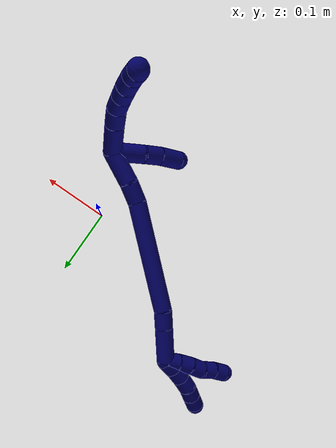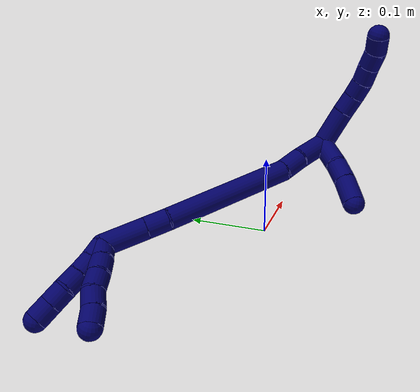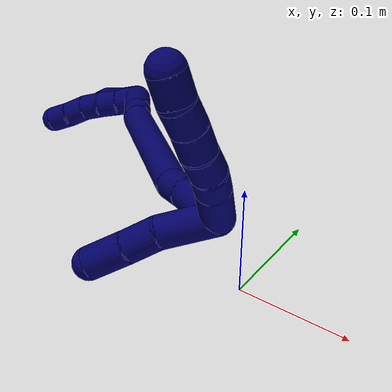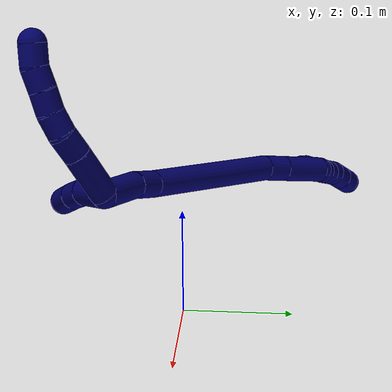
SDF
<sdf version="1.7">
 <world name="default">
  <model name="7">
   <static>0</static>
   <link name="7">
    <collision name="collision-cylinder-e_1_2_8">
     <pose>0.003422 -0.004812 0.022444 0.211224 0.147994 0.015717</pose>
     <geometry><cylinder><radius>0.0125</radius><length>0.046415</length></cylinder></geometry>
     <surface>
      <friction><ode><mu>1.16</mu><mu2>1.16</mu2><slip1>0</slip1><slip2>0</slip2></ode></friction>
      <contact><ode><kp>1e+06</kp><kd>1</kd><max_vel>0</max_vel><min_depth>0.001</min_depth></ode></contact>
     </surface>
    </collision>
    <visual name="visual-cylinder-e_1_2_8">
     <pose>0.003422 -0.004812 0.022444 0.211224 0.147994 0.015717</pose>
     <geometry><cylinder><radius>0.0125</radius><length>0.046415</length></cylinder></geometry>
     <material><ambient>0.003922 0 0.403922 1</ambient></material>
    </visual>
    <collision name="collision-cylinder-e_2_8_9">
     <pose>0.008376 -0.012464 0.055864 0.253153 0.134346 0.017122</pose>
     <geometry><cylinder><radius>0.0125</radius><length>0.022882</length></cylinder></geometry>
     <surface>
      <friction><ode><mu>1.16</mu><mu2>1.16</mu2><slip1>0</slip1><slip2>0</slip2></ode></friction>
      <contact><ode><kp>1e+06</kp><kd>1</kd><max_vel>0</max_vel><min_depth>0.001</min_depth></ode></contact>
     </surface>
    </collision>
    <visual name="visual-cylinder-e_2_8_9">
     <pose>0.008376 -0.012464 0.055864 0.253153 0.134346 0.017122</pose>
     <geometry><cylinder><radius>0.0125</radius><length>0.022882</length></cylinder></geometry>
     <material><ambient>0.003922 0 0.403922 1</ambient></material>
    </visual>
    <collision name="collision-cylinder-e_3_9_10">
     <pose>0.008756 -0.017582 0.076828 0.224192 -0.112041 -0.012625</pose>
     <geometry><cylinder><radius>0.0125</radius><length>0.020618</length></cylinder></geometry>
     <surface>
      <friction><ode><mu>1.16</mu><mu2>1.16</mu2><slip1>0</slip1><slip2>0</slip2></ode></friction>
      <contact><ode><kp>1e+06</kp><kd>1</kd><max_vel>0</max_vel><min_depth>0.001</min_depth></ode></contact>
     </surface>
    </collision>
    <visual name="visual-cylinder-e_3_9_10">
     <pose>0.008756 -0.017582 0.076828 0.224192 -0.112041 -0.012625</pose>
     <geometry><cylinder><radius>0.0125</radius><length>0.020618</length></cylinder></geometry>
     <material><ambient>0.003922 0 0.403922 1</ambient></material>
    </visual>
    <collision name="collision-cylinder-e_4_10_11">
     <pose>0.005645 -0.020611 0.096596 0.076749 -0.197104 -0.007592</pose>
     <geometry><cylinder><radius>0.0125</radius><length>0.020004</length></cylinder></geometry>
     <surface>
      <friction><ode><mu>1.16</mu><mu2>1.16</mu2><slip1>0</slip1><slip2>0</slip2></ode></friction>
      <contact><ode><kp>1e+06</kp><kd>1</kd><max_vel>0</max_vel><min_depth>0.001</min_depth></ode></contact>
     </surface>
    </collision>
    <visual name="visual-cylinder-e_4_10_11">
     <pose>0.005645 -0.020611 0.096596 0.076749 -0.197104 -0.007592</pose>
     <geometry><cylinder><radius>0.0125</radius><length>0.020004</length></cylinder></geometry>
     <material><ambient>0.003922 0 0.403922 1</ambient></material>
    </visual>
    <collision name="collision-cylinder-e_5_11_12">
     <pose>0.001307 -0.022667 0.116041 0.134057 -0.239254 -0.016138</pose>
     <geometry><cylinder><radius>0.0125</radius><length>0.020078</length></cylinder></geometry>
     <surface>
      <friction><ode><mu>1.16</mu><mu2>1.16</mu2><slip1>0</slip1><slip2>0</slip2></ode></friction>
      <contact><ode><kp>1e+06</kp><kd>1</kd><max_vel>0</max_vel><min_depth>0.001</min_depth></ode></contact>
     </surface>
    </collision>
    <visual name="visual-cylinder-e_5_11_12">
     <pose>0.001307 -0.022667 0.116041 0.134057 -0.239254 -0.016138</pose>
     <geometry><cylinder><radius>0.0125</radius><length>0.020078</length></cylinder></geometry>
     <material><ambient>0.003922 0 0.403922 1</ambient></material>
    </visual>
    <collision name="collision-cylinder-e_6_12_6">
     <pose>-0.004695 -0.022851 0.134961 -0.120406 -0.370721 0.022604</pose>
     <geometry><cylinder><radius>0.0125</radius><length>0.020003</length></cylinder></geometry>
     <surface>
      <friction><ode><mu>1.16</mu><mu2>1.16</mu2><slip1>0</slip1><slip2>0</slip2></ode></friction>
      <contact><ode><kp>1e+06</kp><kd>1</kd><max_vel>0</max_vel><min_depth>0.001</min_depth></ode></contact>
     </surface>
    </collision>
    <visual name="visual-cylinder-e_6_12_6">
     <pose>-0.004695 -0.022851 0.134961 -0.120406 -0.370721 0.022604</pose>
     <geometry><cylinder><radius>0.0125</radius><length>0.020003</length></cylinder></geometry>
     <material><ambient>0.003922 0 0.403922 1</ambient></material>
    </visual>
    <collision name="collision-cylinder-e_1_2_13">
     <pose>-0.015267 -0.014515 -0.004363 1.86279 -0.789055 -1.02084</pose>
     <geometry><cylinder><radius>0.0125</radius><length>0.043026</length></cylinder></geometry>
     <surface>
      <friction><ode><mu>1.16</mu><mu2>1.16</mu2><slip1>0</slip1><slip2>0</slip2></ode></friction>
      <contact><ode><kp>1e+06</kp><kd>1</kd><max_vel>0</max_vel><min_depth>0.001</min_depth></ode></contact>
     </surface>
    </collision>
    <visual name="visual-cylinder-e_1_2_13">
     <pose>-0.015267 -0.014515 -0.004363 1.86279 -0.789055 -1.02084</pose>
     <geometry><cylinder><radius>0.0125</radius><length>0.043026</length></cylinder></geometry>
     <material><ambient>0.003922 0 0.403922 1</ambient></material>
    </visual>
    <collision name="collision-cylinder-e_2_13_14">
     <pose>-0.038117 -0.037801 -0.013504 2.06959 -0.649293 -1.03097</pose>
     <geometry><cylinder><radius>0.0125</radius><length>0.02508</length></cylinder></geometry>
     <surface>
      <friction><ode><mu>1.16</mu><mu2>1.16</mu2><slip1>0</slip1><slip2>0</slip2></ode></friction>
      <contact><ode><kp>1e+06</kp><kd>1</kd><max_vel>0</max_vel><min_depth>0.001</min_depth></ode></contact>
     </surface>
    </collision>
    <visual name="visual-cylinder-e_2_13_14">
     <pose>-0.038117 -0.037801 -0.013504 2.06959 -0.649293 -1.03097</pose>
     <geometry><cylinder><radius>0.0125</radius><length>0.02508</length></cylinder></geometry>
     <material><ambient>0.003922 0 0.403922 1</ambient></material>
    </visual>
    <collision name="collision-cylinder-e_3_14_5">
     <pose>-0.056062 -0.056572 -0.025132 2.17137 -0.707348 -1.22199</pose>
     <geometry><cylinder><radius>0.0125</radius><length>0.031894</length></cylinder></geometry>
     <surface>
      <friction><ode><mu>1.16</mu><mu2>1.16</mu2><slip1>0</slip1><slip2>0</slip2></ode></friction>
      <contact><ode><kp>1e+06</kp><kd>1</kd><max_vel>0</max_vel><min_depth>0.001</min_depth></ode></contact>
     </surface>
    </collision>
    <visual name="visual-cylinder-e_3_14_5">
     <pose>-0.056062 -0.056572 -0.025132 2.17137 -0.707348 -1.22199</pose>
     <geometry><cylinder><radius>0.0125</radius><length>0.031894</length></cylinder></geometry>
     <material><ambient>0.003922 0 0.403922 1</ambient></material>
    </visual>
    <collision name="collision-cylinder-e_1_2_15">
     <pose>-0.020656 0.006951 -0.00757 -2.39882 -1.10914 2.019</pose>
     <geometry><cylinder><radius>0.0125</radius><length>0.046143</length></cylinder></geometry>
     <surface>
      <friction><ode><mu>1.16</mu><mu2>1.16</mu2><slip1>0</slip1><slip2>0</slip2></ode></friction>
      <contact><ode><kp>1e+06</kp><kd>1</kd><max_vel>0</max_vel><min_depth>0.001</min_depth></ode></contact>
     </surface>
    </collision>
    <visual name="visual-cylinder-e_1_2_15">
     <pose>-0.020656 0.006951 -0.00757 -2.39882 -1.10914 2.019</pose>
     <geometry><cylinder><radius>0.0125</radius><length>0.046143</length></cylinder></geometry>
     <material><ambient>0.003922 0 0.403922 1</ambient></material>
    </visual>
    <collision name="collision-cylinder-e_2_15_16">
     <pose>-0.052772 0.018422 -0.021642 -2.53397 -0.966065 2.06402</pose>
     <geometry><cylinder><radius>0.0125</radius><length>0.027859</length></cylinder></geometry>
     <surface>
      <friction><ode><mu>1.16</mu><mu2>1.16</mu2><slip1>0</slip1><slip2>0</slip2></ode></friction>
      <contact><ode><kp>1e+06</kp><kd>1</kd><max_vel>0</max_vel><min_depth>0.001</min_depth></ode></contact>
     </surface>
    </collision>
    <visual name="visual-cylinder-e_2_15_16">
     <pose>-0.052772 0.018422 -0.021642 -2.53397 -0.966065 2.06402</pose>
     <geometry><cylinder><radius>0.0125</radius><length>0.027859</length></cylinder></geometry>
     <material><ambient>0.003922 0 0.403922 1</ambient></material>
    </visual>
    <collision name="collision-cylinder-e_3_16_17">
     <pose>-0.122492 0.062054 -0.057206 -2.20987 -0.874286 1.49768</pose>
     <geometry><cylinder><radius>0.0125</radius><length>0.151902</length></cylinder></geometry>
     <surface>
      <friction><ode><mu>1.16</mu><mu2>1.16</mu2><slip1>0</slip1><slip2>0</slip2></ode></friction>
      <contact><ode><kp>1e+06</kp><kd>1</kd><max_vel>0</max_vel><min_depth>0.001</min_depth></ode></contact>
     </surface>
    </collision>
    <visual name="visual-cylinder-e_3_16_17">
     <pose>-0.122492 0.062054 -0.057206 -2.20987 -0.874286 1.49768</pose>
     <geometry><cylinder><radius>0.0125</radius><length>0.151902</length></cylinder></geometry>
     <material><ambient>0.003922 0 0.403922 1</ambient></material>
    </visual>
    <collision name="collision-cylinder-e_4_17_18">
     <pose>-0.188743 0.108795 -0.092139 -2.22649 -0.69274 1.26504</pose>
     <geometry><cylinder><radius>0.0125</radius><length>0.025022</length></cylinder></geometry>
     <surface>
      <friction><ode><mu>1.16</mu><mu2>1.16</mu2><slip1>0</slip1><slip2>0</slip2></ode></friction>
      <contact><ode><kp>1e+06</kp><kd>1</kd><max_vel>0</max_vel><min_depth>0.001</min_depth></ode></contact>
     </surface>
    </collision>
    <visual name="visual-cylinder-e_4_17_18">
     <pose>-0.188743 0.108795 -0.092139 -2.22649 -0.69274 1.26504</pose>
     <geometry><cylinder><radius>0.0125</radius><length>0.025022</length></cylinder></geometry>
     <material><ambient>0.003922 0 0.403922 1</ambient></material>
    </visual>
    <collision name="collision-cylinder-e_5_18_1">
     <pose>-0.212303 0.131499 -0.109517 -2.22286 -0.687402 1.2527</pose>
     <geometry><cylinder><radius>0.0125</radius><length>0.049073</length></cylinder></geometry>
     <surface>
      <friction><ode><mu>1.16</mu><mu2>1.16</mu2><slip1>0</slip1><slip2>0</slip2></ode></friction>
      <contact><ode><kp>1e+06</kp><kd>1</kd><max_vel>0</max_vel><min_depth>0.001</min_depth></ode></contact>
     </surface>
    </collision>
    <visual name="visual-cylinder-e_5_18_1">
     <pose>-0.212303 0.131499 -0.109517 -2.22286 -0.687402 1.2527</pose>
     <geometry><cylinder><radius>0.0125</radius><length>0.049073</length></cylinder></geometry>
     <material><ambient>0.003922 0 0.403922 1</ambient></material>
    </visual>
    <collision name="collision-cylinder-e_1_1_19">
     <pose>-0.236304 0.146525 -0.126401 3.13284 -1.00317 -3.12564</pose>
     <geometry><cylinder><radius>0.0125</radius><length>0.02</length></cylinder></geometry>
     <surface>
      <friction><ode><mu>1.16</mu><mu2>1.16</mu2><slip1>0</slip1><slip2>0</slip2></ode></friction>
      <contact><ode><kp>1e+06</kp><kd>1</kd><max_vel>0</max_vel><min_depth>0.001</min_depth></ode></contact>
     </surface>
    </collision>
    <visual name="visual-cylinder-e_1_1_19">
     <pose>-0.236304 0.146525 -0.126401 3.13284 -1.00317 -3.12564</pose>
     <geometry><cylinder><radius>0.0125</radius><length>0.02</length></cylinder></geometry>
     <material><ambient>0.003922 0 0.403922 1</ambient></material>
    </visual>
    <collision name="collision-cylinder-e_2_19_20">
     <pose>-0.253213 0.147258 -0.137023 -2.99405 -1.01173 2.87632</pose>
     <geometry><cylinder><radius>0.0125</radius><length>0.02</length></cylinder></geometry>
     <surface>
      <friction><ode><mu>1.16</mu><mu2>1.16</mu2><slip1>0</slip1><slip2>0</slip2></ode></friction>
      <contact><ode><kp>1e+06</kp><kd>1</kd><max_vel>0</max_vel><min_depth>0.001</min_depth></ode></contact>
     </surface>
    </collision>
    <visual name="visual-cylinder-e_2_19_20">
     <pose>-0.253213 0.147258 -0.137023 -2.99405 -1.01173 2.87632</pose>
     <geometry><cylinder><radius>0.0125</radius><length>0.02</length></cylinder></geometry>
     <material><ambient>0.003922 0 0.403922 1</ambient></material>
    </visual>
    <collision name="collision-cylinder-e_3_20_21">
     <pose>-0.270102 0.149438 -0.147494 -2.87976 -0.999265 2.66818</pose>
     <geometry><cylinder><radius>0.0125</radius><length>0.02</length></cylinder></geometry>
     <surface>
      <friction><ode><mu>1.16</mu><mu2>1.16</mu2><slip1>0</slip1><slip2>0</slip2></ode></friction>
      <contact><ode><kp>1e+06</kp><kd>1</kd><max_vel>0</max_vel><min_depth>0.001</min_depth></ode></contact>
     </surface>
    </collision>
    <visual name="visual-cylinder-e_3_20_21">
     <pose>-0.270102 0.149438 -0.147494 -2.87976 -0.999265 2.66818</pose>
     <geometry><cylinder><radius>0.0125</radius><length>0.02</length></cylinder></geometry>
     <material><ambient>0.003922 0 0.403922 1</ambient></material>
    </visual>
    <collision name="collision-cylinder-e_4_21_22">
     <pose>-0.285419 0.153021 -0.159614 -2.83501 -0.762397 2.40573</pose>
     <geometry><cylinder><radius>0.0125</radius><length>0.02</length></cylinder></geometry>
     <surface>
      <friction><ode><mu>1.16</mu><mu2>1.16</mu2><slip1>0</slip1><slip2>0</slip2></ode></friction>
      <contact><ode><kp>1e+06</kp><kd>1</kd><max_vel>0</max_vel><min_depth>0.001</min_depth></ode></contact>
     </surface>
    </collision>
    <visual name="visual-cylinder-e_4_21_22">
     <pose>-0.285419 0.153021 -0.159614 -2.83501 -0.762397 2.40573</pose>
     <geometry><cylinder><radius>0.0125</radius><length>0.02</length></cylinder></geometry>
     <material><ambient>0.003922 0 0.403922 1</ambient></material>
    </visual>
    <collision name="collision-cylinder-e_5_22_4">
     <pose>-0.299273 0.157368 -0.173367 -2.83587 -0.768128 2.41317</pose>
     <geometry><cylinder><radius>0.0125</radius><length>0.02</length></cylinder></geometry>
     <surface>
      <friction><ode><mu>1.16</mu><mu2>1.16</mu2><slip1>0</slip1><slip2>0</slip2></ode></friction>
      <contact><ode><kp>1e+06</kp><kd>1</kd><max_vel>0</max_vel><min_depth>0.001</min_depth></ode></contact>
     </surface>
    </collision>
    <visual name="visual-cylinder-e_5_22_4">
     <pose>-0.299273 0.157368 -0.173367 -2.83587 -0.768128 2.41317</pose>
     <geometry><cylinder><radius>0.0125</radius><length>0.02</length></cylinder></geometry>
     <material><ambient>0.003922 0 0.403922 1</ambient></material>
    </visual>
    <collision name="collision-cylinder-e_1_1_23">
     <pose>-0.235719 0.141048 -0.123838 2.0418 -0.90217 -1.33753</pose>
     <geometry><cylinder><radius>0.0125</radius><length>0.02</length></cylinder></geometry>
     <surface>
      <friction><ode><mu>1.16</mu><mu2>1.16</mu2><slip1>0</slip1><slip2>0</slip2></ode></friction>
      <contact><ode><kp>1e+06</kp><kd>1</kd><max_vel>0</max_vel><min_depth>0.001</min_depth></ode></contact>
     </surface>
    </collision>
    <visual name="visual-cylinder-e_1_1_23">
     <pose>-0.235719 0.141048 -0.123838 2.0418 -0.90217 -1.33753</pose>
     <geometry><cylinder><radius>0.0125</radius><length>0.02</length></cylinder></geometry>
     <material><ambient>0.003922 0 0.403922 1</ambient></material>
    </visual>
    <collision name="collision-cylinder-e_2_23_24">
     <pose>-0.252147 0.131094 -0.129244 2.10039 -1.03173 -1.55979</pose>
     <geometry><cylinder><radius>0.0125</radius><length>0.02</length></cylinder></geometry>
     <surface>
      <friction><ode><mu>1.16</mu><mu2>1.16</mu2><slip1>0</slip1><slip2>0</slip2></ode></friction>
      <contact><ode><kp>1e+06</kp><kd>1</kd><max_vel>0</max_vel><min_depth>0.001</min_depth></ode></contact>
     </surface>
    </collision>
    <visual name="visual-cylinder-e_2_23_24">
     <pose>-0.252147 0.131094 -0.129244 2.10039 -1.03173 -1.55979</pose>
     <geometry><cylinder><radius>0.0125</radius><length>0.02</length></cylinder></geometry>
     <material><ambient>0.003922 0 0.403922 1</ambient></material>
    </visual>
    <collision name="collision-cylinder-e_3_24_25">
     <pose>-0.269286 0.123174 -0.135659 2.40156 -1.02682 -1.93644</pose>
     <geometry><cylinder><radius>0.0125</radius><length>0.02</length></cylinder></geometry>
     <surface>
      <friction><ode><mu>1.16</mu><mu2>1.16</mu2><slip1>0</slip1><slip2>0</slip2></ode></friction>
      <contact><ode><kp>1e+06</kp><kd>1</kd><max_vel>0</max_vel><min_depth>0.001</min_depth></ode></contact>
     </surface>
    </collision>
    <visual name="visual-cylinder-e_3_24_25">
     <pose>-0.269286 0.123174 -0.135659 2.40156 -1.02682 -1.93644</pose>
     <geometry><cylinder><radius>0.0125</radius><length>0.02</length></cylinder></geometry>
     <material><ambient>0.003922 0 0.403922 1</ambient></material>
    </visual>
    <collision name="collision-cylinder-e_4_25_26">
     <pose>-0.284813 0.113707 -0.143441 2.15596 -0.771249 -1.29458</pose>
     <geometry><cylinder><radius>0.0125</radius><length>0.02</length></cylinder></geometry>
     <surface>
      <friction><ode><mu>1.16</mu><mu2>1.16</mu2><slip1>0</slip1><slip2>0</slip2></ode></friction>
      <contact><ode><kp>1e+06</kp><kd>1</kd><max_vel>0</max_vel><min_depth>0.001</min_depth></ode></contact>
     </surface>
    </collision>
    <visual name="visual-cylinder-e_4_25_26">
     <pose>-0.284813 0.113707 -0.143441 2.15596 -0.771249 -1.29458</pose>
     <geometry><cylinder><radius>0.0125</radius><length>0.02</length></cylinder></geometry>
     <material><ambient>0.003922 0 0.403922 1</ambient></material>
    </visual>
    <collision name="collision-cylinder-e_5_26_3">
     <pose>-0.299705 0.103216 -0.15151 2.30926 -0.91437 -1.67769</pose>
     <geometry><cylinder><radius>0.0125</radius><length>0.02</length></cylinder></geometry>
     <surface>
      <friction><ode><mu>1.16</mu><mu2>1.16</mu2><slip1>0</slip1><slip2>0</slip2></ode></friction>
      <contact><ode><kp>1e+06</kp><kd>1</kd><max_vel>0</max_vel><min_depth>0.001</min_depth></ode></contact>
     </surface>
    </collision>
    <visual name="visual-cylinder-e_5_26_3">
     <pose>-0.299705 0.103216 -0.15151 2.30926 -0.91437 -1.67769</pose>
     <geometry><cylinder><radius>0.0125</radius><length>0.02</length></cylinder></geometry>
     <material><ambient>0.003922 0 0.403922 1</ambient></material>
    </visual>
    <collision name="collision-sphere-3">
     <pose>-0.307627 0.098703 -0.155618 0 -0 0</pose>
     <geometry><sphere><radius>0.0125</radius></sphere></geometry>
     <surface>
      <friction><ode><mu>1.16</mu><mu2>1.16</mu2><slip1>0</slip1><slip2>0</slip2></ode></friction>
      <contact><ode><kp>1e+06</kp><kd>1</kd><max_vel>0</max_vel><min_depth>0.001</min_depth></ode></contact>
     </surface>
    </collision>
    <visual name="visual-sphere-3">
     <pose>-0.307627 0.098703 -0.155618 0 -0 0</pose>
     <geometry><sphere><radius>0.0125</radius></sphere></geometry>
     <material><ambient>0.003922 0 0.403922 1</ambient></material>
    </visual>
    <collision name="collision-sphere-26">
     <pose>-0.291783 0.107729 -0.147402 0 -0 0</pose>
     <geometry><sphere><radius>0.0125</radius></sphere></geometry>
     <surface>
      <friction><ode><mu>1.16</mu><mu2>1.16</mu2><slip1>0</slip1><slip2>0</slip2></ode></friction>
      <contact><ode><kp>1e+06</kp><kd>1</kd><max_vel>0</max_vel><min_depth>0.001</min_depth></ode></contact>
     </surface>
    </collision>
    <visual name="visual-sphere-26">
     <pose>-0.291783 0.107729 -0.147402 0 -0 0</pose>
     <geometry><sphere><radius>0.0125</radius></sphere></geometry>
     <material><ambient>0.003922 0 0.403922 1</ambient></material>
    </visual>
    <collision name="collision-sphere-25">
     <pose>-0.277842 0.119684 -0.139481 0 -0 0</pose>
     <geometry><sphere><radius>0.0125</radius></sphere></geometry>
     <surface>
      <friction><ode><mu>1.16</mu><mu2>1.16</mu2><slip1>0</slip1><slip2>0</slip2></ode></friction>
      <contact><ode><kp>1e+06</kp><kd>1</kd><max_vel>0</max_vel><min_depth>0.001</min_depth></ode></contact>
     </surface>
    </collision>
    <visual name="visual-sphere-25">
     <pose>-0.277842 0.119684 -0.139481 0 -0 0</pose>
     <geometry><sphere><radius>0.0125</radius></sphere></geometry>
     <material><ambient>0.003922 0 0.403922 1</ambient></material>
    </visual>
    <collision name="collision-sphere-24">
     <pose>-0.260729 0.126664 -0.131837 0 -0 0</pose>
     <geometry><sphere><radius>0.0125</radius></sphere></geometry>
     <surface>
      <friction><ode><mu>1.16</mu><mu2>1.16</mu2><slip1>0</slip1><slip2>0</slip2></ode></friction>
      <contact><ode><kp>1e+06</kp><kd>1</kd><max_vel>0</max_vel><min_depth>0.001</min_depth></ode></contact>
     </surface>
    </collision>
    <visual name="visual-sphere-24">
     <pose>-0.260729 0.126664 -0.131837 0 -0 0</pose>
     <geometry><sphere><radius>0.0125</radius></sphere></geometry>
     <material><ambient>0.003922 0 0.403922 1</ambient></material>
    </visual>
    <collision name="collision-sphere-23">
     <pose>-0.243566 0.135524 -0.126651 0 -0 0</pose>
     <geometry><sphere><radius>0.0125</radius></sphere></geometry>
     <surface>
      <friction><ode><mu>1.16</mu><mu2>1.16</mu2><slip1>0</slip1><slip2>0</slip2></ode></friction>
      <contact><ode><kp>1e+06</kp><kd>1</kd><max_vel>0</max_vel><min_depth>0.001</min_depth></ode></contact>
     </surface>
    </collision>
    <visual name="visual-sphere-23">
     <pose>-0.243566 0.135524 -0.126651 0 -0 0</pose>
     <geometry><sphere><radius>0.0125</radius></sphere></geometry>
     <material><ambient>0.003922 0 0.403922 1</ambient></material>
    </visual>
    <collision name="collision-sphere-4">
     <pose>-0.306221 0.159533 -0.180226 0 -0 0</pose>
     <geometry><sphere><radius>0.0125</radius></sphere></geometry>
     <surface>
      <friction><ode><mu>1.16</mu><mu2>1.16</mu2><slip1>0</slip1><slip2>0</slip2></ode></friction>
      <contact><ode><kp>1e+06</kp><kd>1</kd><max_vel>0</max_vel><min_depth>0.001</min_depth></ode></contact>
     </surface>
    </collision>
    <visual name="visual-sphere-4">
     <pose>-0.306221 0.159533 -0.180226 0 -0 0</pose>
     <geometry><sphere><radius>0.0125</radius></sphere></geometry>
     <material><ambient>0.003922 0 0.403922 1</ambient></material>
    </visual>
    <collision name="collision-sphere-22">
     <pose>-0.292325 0.155203 -0.166508 0 -0 0</pose>
     <geometry><sphere><radius>0.0125</radius></sphere></geometry>
     <surface>
      <friction><ode><mu>1.16</mu><mu2>1.16</mu2><slip1>0</slip1><slip2>0</slip2></ode></friction>
      <contact><ode><kp>1e+06</kp><kd>1</kd><max_vel>0</max_vel><min_depth>0.001</min_depth></ode></contact>
     </surface>
    </collision>
    <visual name="visual-sphere-22">
     <pose>-0.292325 0.155203 -0.166508 0 -0 0</pose>
     <geometry><sphere><radius>0.0125</radius></sphere></geometry>
     <material><ambient>0.003922 0 0.403922 1</ambient></material>
    </visual>
    <collision name="collision-sphere-21">
     <pose>-0.278512 0.150838 -0.152719 0 -0 0</pose>
     <geometry><sphere><radius>0.0125</radius></sphere></geometry>
     <surface>
      <friction><ode><mu>1.16</mu><mu2>1.16</mu2><slip1>0</slip1><slip2>0</slip2></ode></friction>
      <contact><ode><kp>1e+06</kp><kd>1</kd><max_vel>0</max_vel><min_depth>0.001</min_depth></ode></contact>
     </surface>
    </collision>
    <visual name="visual-sphere-21">
     <pose>-0.278512 0.150838 -0.152719 0 -0 0</pose>
     <geometry><sphere><radius>0.0125</radius></sphere></geometry>
     <material><ambient>0.003922 0 0.403922 1</ambient></material>
    </visual>
    <collision name="collision-sphere-20">
     <pose>-0.261691 0.148038 -0.142269 0 -0 0</pose>
     <geometry><sphere><radius>0.0125</radius></sphere></geometry>
     <surface>
      <friction><ode><mu>1.16</mu><mu2>1.16</mu2><slip1>0</slip1><slip2>0</slip2></ode></friction>
      <contact><ode><kp>1e+06</kp><kd>1</kd><max_vel>0</max_vel><min_depth>0.001</min_depth></ode></contact>
     </surface>
    </collision>
    <visual name="visual-sphere-20">
     <pose>-0.261691 0.148038 -0.142269 0 -0 0</pose>
     <geometry><sphere><radius>0.0125</radius></sphere></geometry>
     <material><ambient>0.003922 0 0.403922 1</ambient></material>
    </visual>
    <collision name="collision-sphere-12">
     <pose>-0.001072 -0.02397 0.125707 0 -0 0</pose>
     <geometry><sphere><radius>0.0125</radius></sphere></geometry>
     <surface>
      <friction><ode><mu>1.16</mu><mu2>1.16</mu2><slip1>0</slip1><slip2>0</slip2></ode></friction>
      <contact><ode><kp>1e+06</kp><kd>1</kd><max_vel>0</max_vel><min_depth>0.001</min_depth></ode></contact>
     </surface>
    </collision>
    <visual name="visual-sphere-12">
     <pose>-0.001072 -0.02397 0.125707 0 -0 0</pose>
     <geometry><sphere><radius>0.0125</radius></sphere></geometry>
     <material><ambient>0.003922 0 0.403922 1</ambient></material>
    </visual>
    <collision name="collision-sphere-11">
     <pose>0.003686 -0.021363 0.106375 0 -0 0</pose>
     <geometry><sphere><radius>0.0125</radius></sphere></geometry>
     <surface>
      <friction><ode><mu>1.16</mu><mu2>1.16</mu2><slip1>0</slip1><slip2>0</slip2></ode></friction>
      <contact><ode><kp>1e+06</kp><kd>1</kd><max_vel>0</max_vel><min_depth>0.001</min_depth></ode></contact>
     </surface>
    </collision>
    <visual name="visual-sphere-11">
     <pose>0.003686 -0.021363 0.106375 0 -0 0</pose>
     <geometry><sphere><radius>0.0125</radius></sphere></geometry>
     <material><ambient>0.003922 0 0.403922 1</ambient></material>
    </visual>
    <collision name="collision-sphere-10">
     <pose>0.007604 -0.019859 0.086816 0 -0 0</pose>
     <geometry><sphere><radius>0.0125</radius></sphere></geometry>
     <surface>
      <friction><ode><mu>1.16</mu><mu2>1.16</mu2><slip1>0</slip1><slip2>0</slip2></ode></friction>
      <contact><ode><kp>1e+06</kp><kd>1</kd><max_vel>0</max_vel><min_depth>0.001</min_depth></ode></contact>
     </surface>
    </collision>
    <visual name="visual-sphere-10">
     <pose>0.007604 -0.019859 0.086816 0 -0 0</pose>
     <geometry><sphere><radius>0.0125</radius></sphere></geometry>
     <material><ambient>0.003922 0 0.403922 1</ambient></material>
    </visual>
    <collision name="collision-sphere-9">
     <pose>0.009909 -0.015304 0.06684 0 -0 0</pose>
     <geometry><sphere><radius>0.0125</radius></sphere></geometry>
     <surface>
      <friction><ode><mu>1.16</mu><mu2>1.16</mu2><slip1>0</slip1><slip2>0</slip2></ode></friction>
      <contact><ode><kp>1e+06</kp><kd>1</kd><max_vel>0</max_vel><min_depth>0.001</min_depth></ode></contact>
     </surface>
    </collision>
    <visual name="visual-sphere-9">
     <pose>0.009909 -0.015304 0.06684 0 -0 0</pose>
     <geometry><sphere><radius>0.0125</radius></sphere></geometry>
     <material><ambient>0.003922 0 0.403922 1</ambient></material>
    </visual>
    <collision name="collision-sphere-2">
     <geometry><sphere><radius>0.0125</radius></sphere></geometry>
     <surface>
      <friction><ode><mu>1.16</mu><mu2>1.16</mu2><slip1>0</slip1><slip2>0</slip2></ode></friction>
      <contact><ode><kp>1e+06</kp><kd>1</kd><max_vel>0</max_vel><min_depth>0.001</min_depth></ode></contact>
     </surface>
    </collision>
    <visual name="visual-sphere-2">
     <geometry><sphere><radius>0.0125</radius></sphere></geometry>
     <material><ambient>0.003922 0 0.403922 1</ambient></material>
    </visual>
    <collision name="collision-sphere-19">
     <pose>-0.244736 0.146478 -0.131777 0 -0 0</pose>
     <geometry><sphere><radius>0.0125</radius></sphere></geometry>
     <surface>
      <friction><ode><mu>1.16</mu><mu2>1.16</mu2><slip1>0</slip1><slip2>0</slip2></ode></friction>
      <contact><ode><kp>1e+06</kp><kd>1</kd><max_vel>0</max_vel><min_depth>0.001</min_depth></ode></contact>
     </surface>
    </collision>
    <visual name="visual-sphere-19">
     <pose>-0.244736 0.146478 -0.131777 0 -0 0</pose>
     <geometry><sphere><radius>0.0125</radius></sphere></geometry>
     <material><ambient>0.003922 0 0.403922 1</ambient></material>
    </visual>
    <collision name="collision-sphere-8">
     <pose>0.006844 -0.009625 0.044887 0 -0 0</pose>
     <geometry><sphere><radius>0.0125</radius></sphere></geometry>
     <surface>
      <friction><ode><mu>1.16</mu><mu2>1.16</mu2><slip1>0</slip1><slip2>0</slip2></ode></friction>
      <contact><ode><kp>1e+06</kp><kd>1</kd><max_vel>0</max_vel><min_depth>0.001</min_depth></ode></contact>
     </surface>
    </collision>
    <visual name="visual-sphere-8">
     <pose>0.006844 -0.009625 0.044887 0 -0 0</pose>
     <geometry><sphere><radius>0.0125</radius></sphere></geometry>
     <material><ambient>0.003922 0 0.403922 1</ambient></material>
    </visual>
    <collision name="collision-sphere-6">
     <pose>-0.008319 -0.021731 0.144216 0 -0 0</pose>
     <geometry><sphere><radius>0.0125</radius></sphere></geometry>
     <surface>
      <friction><ode><mu>1.16</mu><mu2>1.16</mu2><slip1>0</slip1><slip2>0</slip2></ode></friction>
      <contact><ode><kp>1e+06</kp><kd>1</kd><max_vel>0</max_vel><min_depth>0.001</min_depth></ode></contact>
     </surface>
    </collision>
    <visual name="visual-sphere-6">
     <pose>-0.008319 -0.021731 0.144216 0 -0 0</pose>
     <geometry><sphere><radius>0.0125</radius></sphere></geometry>
     <material><ambient>0.003922 0 0.403922 1</ambient></material>
    </visual>
    <collision name="collision-sphere-13">
     <pose>-0.030535 -0.029029 -0.008726 0 -0 0</pose>
     <geometry><sphere><radius>0.0125</radius></sphere></geometry>
     <surface>
      <friction><ode><mu>1.16</mu><mu2>1.16</mu2><slip1>0</slip1><slip2>0</slip2></ode></friction>
      <contact><ode><kp>1e+06</kp><kd>1</kd><max_vel>0</max_vel><min_depth>0.001</min_depth></ode></contact>
     </surface>
    </collision>
    <visual name="visual-sphere-13">
     <pose>-0.030535 -0.029029 -0.008726 0 -0 0</pose>
     <geometry><sphere><radius>0.0125</radius></sphere></geometry>
     <material><ambient>0.003922 0 0.403922 1</ambient></material>
    </visual>
    <collision name="collision-sphere-14">
     <pose>-0.045699 -0.046572 -0.018282 0 -0 0</pose>
     <geometry><sphere><radius>0.0125</radius></sphere></geometry>
     <surface>
      <friction><ode><mu>1.16</mu><mu2>1.16</mu2><slip1>0</slip1><slip2>0</slip2></ode></friction>
      <contact><ode><kp>1e+06</kp><kd>1</kd><max_vel>0</max_vel><min_depth>0.001</min_depth></ode></contact>
     </surface>
    </collision>
    <visual name="visual-sphere-14">
     <pose>-0.045699 -0.046572 -0.018282 0 -0 0</pose>
     <geometry><sphere><radius>0.0125</radius></sphere></geometry>
     <material><ambient>0.003922 0 0.403922 1</ambient></material>
    </visual>
    <collision name="collision-sphere-5">
     <pose>-0.066424 -0.066572 -0.031982 0 -0 0</pose>
     <geometry><sphere><radius>0.0125</radius></sphere></geometry>
     <surface>
      <friction><ode><mu>1.16</mu><mu2>1.16</mu2><slip1>0</slip1><slip2>0</slip2></ode></friction>
      <contact><ode><kp>1e+06</kp><kd>1</kd><max_vel>0</max_vel><min_depth>0.001</min_depth></ode></contact>
     </surface>
    </collision>
    <visual name="visual-sphere-5">
     <pose>-0.066424 -0.066572 -0.031982 0 -0 0</pose>
     <geometry><sphere><radius>0.0125</radius></sphere></geometry>
     <material><ambient>0.003922 0 0.403922 1</ambient></material>
    </visual>
    <collision name="collision-sphere-15">
     <pose>-0.041313 0.013901 -0.01514 0 -0 0</pose>
     <geometry><sphere><radius>0.0125</radius></sphere></geometry>
     <surface>
      <friction><ode><mu>1.16</mu><mu2>1.16</mu2><slip1>0</slip1><slip2>0</slip2></ode></friction>
      <contact><ode><kp>1e+06</kp><kd>1</kd><max_vel>0</max_vel><min_depth>0.001</min_depth></ode></contact>
     </surface>
    </collision>
    <visual name="visual-sphere-15">
     <pose>-0.041313 0.013901 -0.01514 0 -0 0</pose>
     <geometry><sphere><radius>0.0125</radius></sphere></geometry>
     <material><ambient>0.003922 0 0.403922 1</ambient></material>
    </visual>
    <collision name="collision-sphere-16">
     <pose>-0.064231 0.022944 -0.028144 0 -0 0</pose>
     <geometry><sphere><radius>0.0125</radius></sphere></geometry>
     <surface>
      <friction><ode><mu>1.16</mu><mu2>1.16</mu2><slip1>0</slip1><slip2>0</slip2></ode></friction>
      <contact><ode><kp>1e+06</kp><kd>1</kd><max_vel>0</max_vel><min_depth>0.001</min_depth></ode></contact>
     </surface>
    </collision>
    <visual name="visual-sphere-16">
     <pose>-0.064231 0.022944 -0.028144 0 -0 0</pose>
     <geometry><sphere><radius>0.0125</radius></sphere></geometry>
     <material><ambient>0.003922 0 0.403922 1</ambient></material>
    </visual>
    <collision name="collision-sphere-17">
     <pose>-0.180753 0.101164 -0.086269 0 -0 0</pose>
     <geometry><sphere><radius>0.0125</radius></sphere></geometry>
     <surface>
      <friction><ode><mu>1.16</mu><mu2>1.16</mu2><slip1>0</slip1><slip2>0</slip2></ode></friction>
      <contact><ode><kp>1e+06</kp><kd>1</kd><max_vel>0</max_vel><min_depth>0.001</min_depth></ode></contact>
     </surface>
    </collision>
    <visual name="visual-sphere-17">
     <pose>-0.180753 0.101164 -0.086269 0 -0 0</pose>
     <geometry><sphere><radius>0.0125</radius></sphere></geometry>
     <material><ambient>0.003922 0 0.403922 1</ambient></material>
    </visual>
    <collision name="collision-sphere-18">
     <pose>-0.196734 0.116425 -0.098009 0 -0 0</pose>
     <geometry><sphere><radius>0.0125</radius></sphere></geometry>
     <surface>
      <friction><ode><mu>1.16</mu><mu2>1.16</mu2><slip1>0</slip1><slip2>0</slip2></ode></friction>
      <contact><ode><kp>1e+06</kp><kd>1</kd><max_vel>0</max_vel><min_depth>0.001</min_depth></ode></contact>
     </surface>
    </collision>
    <visual name="visual-sphere-18">
     <pose>-0.196734 0.116425 -0.098009 0 -0 0</pose>
     <geometry><sphere><radius>0.0125</radius></sphere></geometry>
     <material><ambient>0.003922 0 0.403922 1</ambient></material>
    </visual>
    <collision name="collision-sphere-1">
     <pose>-0.227872 0.146572 -0.121025 0 -0 0</pose>
     <geometry><sphere><radius>0.0125</radius></sphere></geometry>
     <surface>
      <friction><ode><mu>1.16</mu><mu2>1.16</mu2><slip1>0</slip1><slip2>0</slip2></ode></friction>
      <contact><ode><kp>1e+06</kp><kd>1</kd><max_vel>0</max_vel><min_depth>0.001</min_depth></ode></contact>
     </surface>
    </collision>
    <visual name="visual-sphere-1">
     <pose>-0.227872 0.146572 -0.121025 0 -0 0</pose>
     <geometry><sphere><radius>0.0125</radius></sphere></geometry>
     <material><ambient>0.003922 0 0.403922 1</ambient></material>
    </visual>
    <inertial>
     <pose>-0.123621 0.054907 -0.048448 0 -0 0</pose>
     <mass>0.75</mass>
     <inertia>
      <ixx>0.000193</ixx>
      <ixy>0</ixy>
      <ixz>0</ixz>
      <iyy>0.000416</iyy>
      <iyz>0</iyz>
      <izz>0.000111</izz>
     </inertia>
    </inertial>
   </link>
   <pose>0.018688 -0.065829 0.122283 0.240516 0.08407 -0.078782</pose>
  </model>
 </world>
</sdf>
